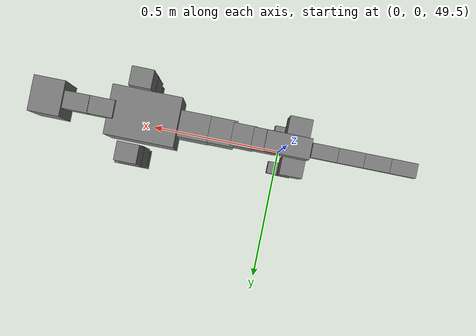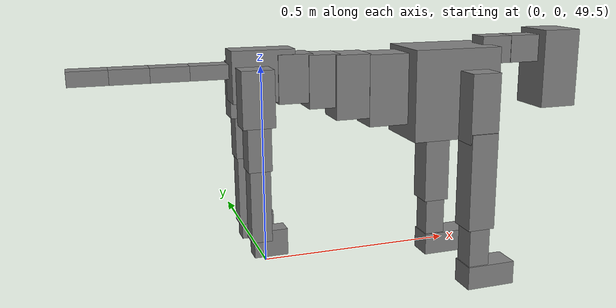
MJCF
<mujoco model="dog">

    <default>
        <joint armature="0.02" stiffness="1" damping="0.2" limited="true"/>
        <geom condim="3" friction="1 0.05 0.05" margin="0.01"/>
        <motor ctrllimited="true" ctrlrange="-1.0 1.0" forcelimited="true" gear="50"/>
    </default>

    <compiler inertiafromgeom="true" angle="radian"/>

    <option timestep="0.016" iterations="50" tolerance="1e-10" solver="Newton" jacobian="dense" cone="pyramidal"/>

    <size nconmax="20000" njmax="60000" nstack="5000000"/>
    <visual>
        <map force="0.1" zfar="30"/>
        <rgba haze="0.15 0.25 0.35 1"/>
        <quality shadowsize="2048"/>
        <global offwidth="800" offheight="800"/>
    </visual>

    <asset>
        <texture type="skybox" builtin="gradient" rgb1="0.3 0.5 0.7" rgb2="0 0 0" width="512" height="512"/>
        <texture name="texplane" type="2d" builtin="checker" rgb1=".2 .3 .4" rgb2=".1 0.15 0.2" width="512" height="512"
                 mark="cross" markrgb=".8 .8 .8"/>
        <texture name="texgeom" type="cube" builtin="flat" mark="cross" width="127" height="1278" rgb1="0.8 0.6 0.4"
                 rgb2="0.8 0.6 0.4" markrgb="1 1 1" random="0.01"/>

        <material name="matplane" reflectance="0.3" texture="texplane" texrepeat="1 1" texuniform="true"/>
        <material name="matgeom" texture="texgeom" texuniform="true" rgba="0.8 0.6 .4 1"/>
    </asset>

    <worldbody>
        <geom name="floor" pos="0 0 0" size="0 0 .25" type="plane" material="matplane" condim="3"/>

        <light directional="false" diffuse=".2 .2 .2" specular="0 0 0" pos="0 0 5" dir="0 0 -1" castshadow="false"/>
        <light mode="targetbodycom" target="torso" directional="false" diffuse=".8 .8 .8" specular="0.3 0.3 0.3"
               pos="0 0 4.0" dir="0 0 -1"/>

        <body name="root" pos="0 0 50">
            <freejoint name="root_1"/>
            <geom type="box" pos="0 0 -0.02" size="0.0774  0.0358  0.063" density="2030"/>

            <body name="spine1" pos="0.054 0 0">
                <joint name="spine1_y" axis="0 1 0" range="0 0.7" limited="true"/>
                <geom type="box" pos="0.02375 0 -0.03" size="0.04375  0.0375  0.05985" density="2030"/>

                <body name="spine2" pos="0.0612 0 0">
                    <joint name="spine2_y" axis="0 1 0" range="-0.15 0.15" limited="true"/>
                    <geom type="box" pos="0.03555  0  -0.04" size="0.04055  0.039  0.06615" density="2030"/>

                    <body name="spine3" pos="0.0730 0 0">
                        <joint name="spine3_y" axis="0 1 0" range="-0.15 0.15" limited="true"/>
                        <geom type="box" pos="0.03555  0  -0.057" size="0.04555  0.0445  0.081" density="2030"/>

                        <body name="spine4" pos="0.0780 0 0">
                            <joint name="spine4_y" axis="0 1 0" range="-0.15 0.15" limited="true"/>
                            <geom type="box" pos="0.05265  0  -0.07" size="0.05265  0.045  0.09135" density="2030"/>

                            <body name="torso" pos="0.1082 0 0">
                                <joint name="torso_y" axis="0 1 0" range="-0.15 0.15" limited="true"/>
                                <geom type="box" pos="0.11925  0  -0.085" size="0.11925  0.085  0.11745"
                                      density="2030"/>

                                <body name="neck1" pos="0.2160  0   0.0180">
                                    <joint name="neck1_y" axis="0 1 0" range="-1.2  -1" limited="true"/>
                                    <geom type="box" pos="0.0423  0  0" size="0.0423  0.03  0.036" density="2325"/>

                                    <body name="neck2" pos="0.0853  0  0">
                                        <joint name="neck2_y" axis="0 1 0" range="0.1  0" limited="true"/>
                                        <geom type="box" pos="0.0423  0  0" size="0.0423  0.03  0.036" density="2325"/>

                                        <body name="head" pos="0.0853  0  0">
                                            <joint name="head_y" axis="0 1 0" range="-0.3  -0.2" limited="true"/>
                                            <geom type="box" pos="0.0531  0  -0.055" size="0.0531  0.06  0.1044"
                                                  density="4030"/>

                                        </body>
                                    </body>
                                </body>

                                <body name="front_shoulder" pos="0.156  0   -0.0480">
                                    <joint name="front_shoulder_y" axis="0 1 0" range="-1 1.5" limited="true"/>
                                    <geom type="box" pos="0 0.13 -0.0631" size="0.0390  0.0333  0.0897" density="1158"/>
                                    <geom type="box" pos="0 -0.13 -0.0631" size="0.0390  0.0333  0.0897"
                                          density="1158"/>

                                    <body name="front_elbow" pos="0  0  -0.1261">
                                        <joint name="front_elbow_y" axis="0 1 0" range="-2 0" limited="true"/>
                                        <geom type="box" pos="0 0.13 -0.1268" size="0.0365  0.0373  0.1268"
                                              density="1081"/>
                                        <geom type="box" pos="0 -0.13 -0.1268" size="0.0365  0.0373  0.1268"
                                              density="1081"/>

                                        <body name="front_wrist" pos="0  0  -0.2537">
                                            <joint name="front_wrist_y" axis="0 1 0" range="-0.2 0" limited="true"/>
                                            <geom type="box" pos="0 0.13 -0.0581" size="0.0283  0.0314  0.0713"
                                                  density="1664"/>
                                            <geom type="box" pos="0 -0.13 -0.0581" size="0.0283  0.0314  0.0713"
                                                  density="1664"/>

                                            <body name="front_finger_end" pos="0  0  -0.1163">
                                                <joint name="front_finger_y" axis="0 1 0" range="-0.4 1"
                                                       limited="true"/>
                                                <geom type="box" pos="0.0365  0.13  -0.0161"
                                                      size="0.0669  0.0365  0.0311" density="1515"/>
                                                <geom type="box" pos="0.0365  -0.13  -0.0161"
                                                      size="0.0669  0.0365  0.0311" density="1515"/>

                                            </body>

                                        </body>
                                    </body>
                                </body>

                            </body>
                        </body>
                    </body>
                </body>
            </body>

            <body name="back_hip" pos="-0.03 0 -0.018">
                <joint name="back_hip_y" axis="0 1 0" range="-1.5 0.3" limited="true"/>
                <geom type="box" pos="0 0.07 -0.0457" size="0.0393  0.0308  0.0685" density="1154"/>
                <geom type="box" pos="0 -0.07 -0.0457" size="0.0393  0.0308  0.0685" density="1154"/>

                <body name="back_knee" pos="0  0  -0.0914">
                    <joint name="back_knee_y" axis="0 1 0" range="0 2.8" limited="true"/>
                    <geom type="box" pos="0 0.07 -0.0560" size="0.0286  0.0282  0.0715" density="1227"/>
                    <geom type="box" pos="0 -0.07 -0.0560" size="0.0286  0.0282  0.0715" density="1227"/>

                    <body name="back_ankle" pos="0  0  -0.1119">
                        <joint name="back_ankle_y" axis="0 1 0" range="-2.2 0" limited="true"/>
                        <geom type="box" pos="0 0.07 -0.0905" size="0.0250  0.0250  0.1017" density="1284"/>
                        <geom type="box" pos="0 -0.07 -0.0905" size="0.0250  0.0250  0.1017" density="1284"/>

                        <body name="back_toe_end" pos="0  0  -0.1810">
                            <joint name="back_toe_y" axis="0 1 0" range="-0.4 1" limited="true"/>
                            <geom type="box" pos="0.0226  0.07  -0.0180" size="0.0414  0.0226  0.0330" density="1515"/>
                            <geom type="box" pos="0.0226  -0.07  -0.0180" size="0.0414  0.0226  0.0330" density="1515"/>

                        </body>
                    </body>
                </body>
            </body>

            <body name="tail1" pos="-0.074 0 -0.006">
                <joint name="tail1_y" axis="0 1 0" range="-0.2 0.2" limited="true"/>
                <geom type="box" pos="-0.0536  0  0" size="0.045  0.025  0.0175" density="1587"/>

                <body name="tail2" pos="-0.09 0 0">
                    <joint name="tail2_y" axis="0 1 0" range="-0.2 0.2" limited="true"/>
                    <geom type="box" pos="-0.0536  0  0" size="0.045  0.025  0.0175" density="1587"/>

                    <body name="tail3" pos="-0.09 0 0">
                        <joint name="tail3_y" axis="0 1 0" range="-0.2 0.2" limited="true"/>
                        <geom type="box" pos="-0.0536  0  0" size="0.045  0.025  0.0175" density="1587"/>

                        <body name="tail4" pos="-0.09 0 0">
                            <joint name="tail4_y" axis="0 1 0" range="-0.2 0.2" limited="true"/>
                            <geom type="box" pos="-0.0536  0  0" size="0.045  0.025  0.0175" density="1587"/>

                        </body>
                    </body>
                </body>
            </body>
        </body>
    </worldbody>

    <actuator>
        <motor joint="spine1_y" forcerange="-150 150     "/>
        <motor joint="spine2_y" forcerange="-150 150     "/>
        <motor joint="spine3_y" forcerange="-150 150     "/>
        <motor joint="spine4_y" forcerange="-150 150     "/>
        <motor joint="torso_y" forcerange="-150 150     "/>
        <motor joint="neck1_y" forcerange="-100 100       "/>
        <motor joint="neck2_y" forcerange="-100 100       "/>
        <motor joint="head_y" forcerange="-150 150       "/>
        <motor joint="front_shoulder_y" forcerange="-199.13 122.98"/>
        <motor joint="front_elbow_y" forcerange="-195.49 175.56"/>
        <motor joint="front_wrist_y" forcerange="-133.57 117.55"/>
        <motor joint="front_finger_y" forcerange="-88.12 66.45"/>
        <motor joint="back_hip_y" forcerange="-287.10 324.16"/>
        <motor joint="back_knee_y" forcerange="-222.40 387.85"/>
        <motor joint="back_angle_y" forcerange="-112.88 186.42"/>
        <motor joint="back_toe_y" forcerange="-73.26 27.38"/>
        <motor joint="tail1_y" forcerange="-50 50     "/>
        <motor joint="tail2_y" forcerange="-50 50     "/>
        <motor joint="tail3_y" forcerange="-50 50     "/>
        <motor joint="tail4_y" forcerange="-50 50     "/>
    </actuator>
</mujoco>
